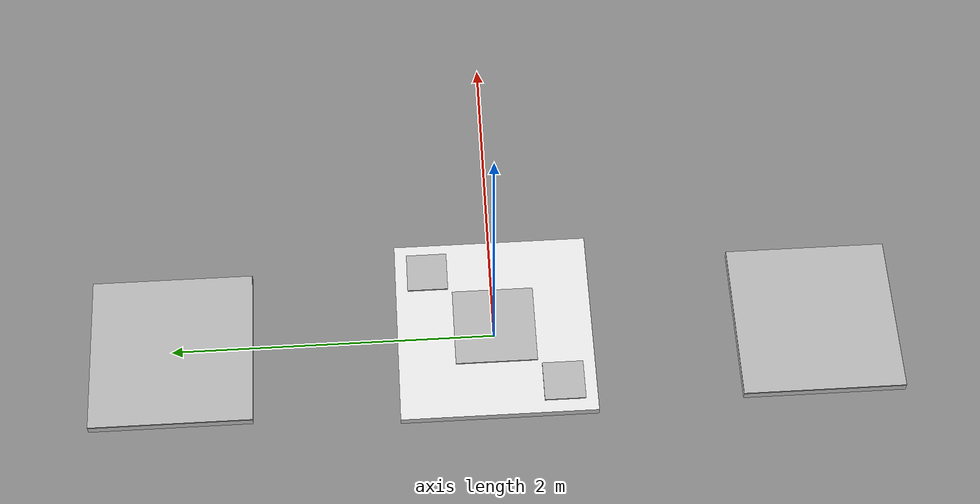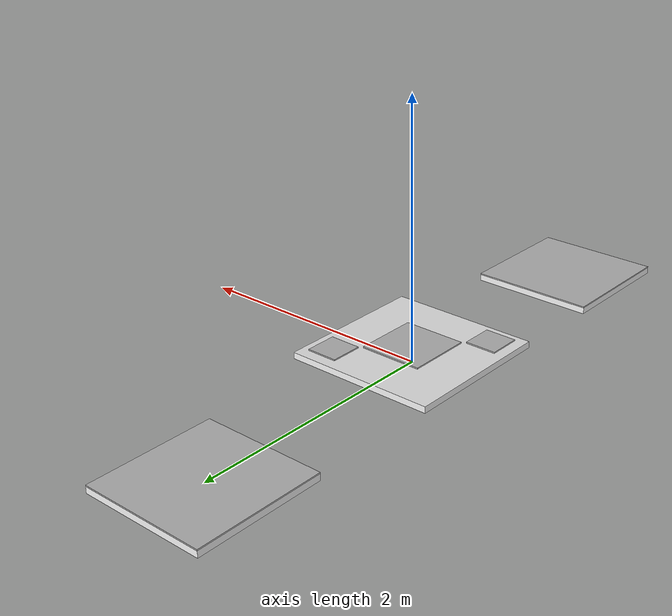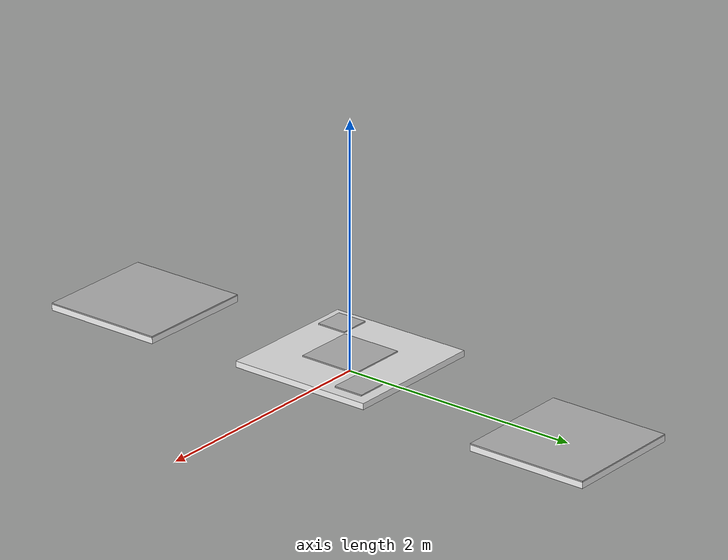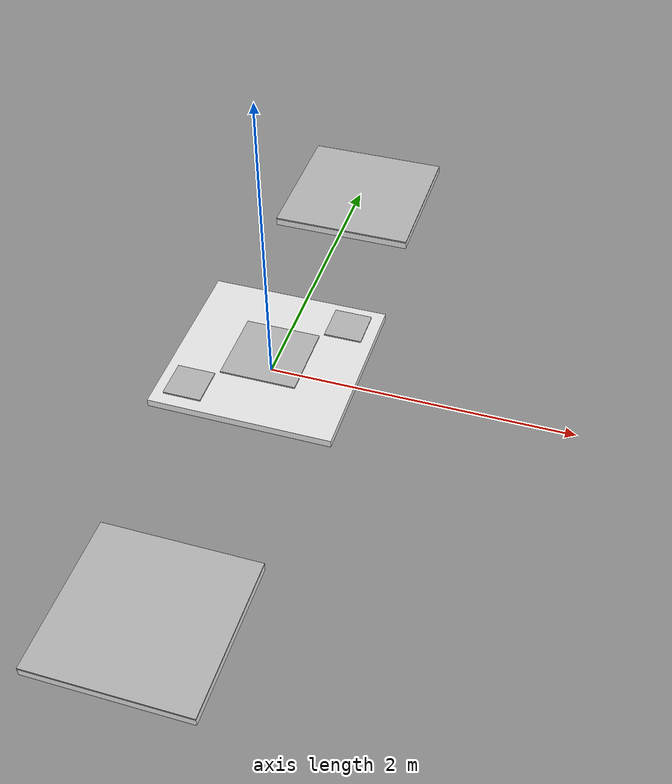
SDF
<sdf version="1.5">
 <world name="default">
  <scene>
   <sky><clouds><speed>12</speed></clouds></sky>
   <ambient>0.95 0.95 0.95 1</ambient>
   <background>0.3 0.3 0.3 1</background>
   <shadows>true</shadows>
  </scene>
  <include><uri>model://sun</uri></include>
  <include><uri>model://landing_pad</uri></include>
  <include><uri>model://at_0</uri><pose>0 2 0 0 0 0</pose></include>
  <include><uri>model://at_1</uri><pose>0 -2 0 0 0 0</pose></include>
  <spherical_coordinates>
   <surface_model>EARTH_WGS84</surface_model>
   <latitude_deg>37.413534</latitude_deg>
   <longitude_deg>-121.996561</longitude_deg>
   <elevation>1.3</elevation>
  </spherical_coordinates>
  <physics name="default_physics" default="0" type="ode">
   <gravity>0 0 -9.8066</gravity>
   <ode>
    <solver>
     <type>quick</type>
     <iters>10</iters>
     <sor>1.3</sor>
     <use_dynamic_moi_rescaling>0</use_dynamic_moi_rescaling>
    </solver>
    <constraints>
     <cfm>0</cfm>
     <erp>0.2</erp>
     <contact_max_correcting_vel>100</contact_max_correcting_vel>
     <contact_surface_layer>0.001</contact_surface_layer>
    </constraints>
   </ode>
   <max_step_size>0.004</max_step_size>
   <real_time_factor>1</real_time_factor>
   <real_time_update_rate>250</real_time_update_rate>
   <magnetic_field>6.0e-6 2.3e-5 -4.2e-5</magnetic_field>
  </physics>
 </world>
</sdf>

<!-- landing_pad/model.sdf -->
<sdf version="1.5">
  <model name="landing_pad">
    <pose>0.0 0.0 0.1  0 0 0</pose>
    <static>false</static>
    <link name="link">
      <collision name="base_collision">
        <geometry>
          <box>
            <size>1.2 1.2 0.05</size>
          </box>
        </geometry>
      </collision>
      <visual name="base_visual">
        <geometry>
          <box>
            <size>1.2 1.2 0.05</size>
          </box>
        </geometry>
        <material>
          <script>
            <name>Gazebo/White</name>
            <uri>file://media/materials/scripts/gazebo.material</uri>
          </script>
        </material>
      </visual>
      <visual name="pad_visual">
      	<pose>0 0 0.04 0 0 0</pose>
        <geometry>
          <box>
            <size>0.5 0.5 0.01</size>
          </box>
        </geometry>
        <material>
          <script>
          	<uri>model://landing_pad/materials/scripts</uri>
               <uri>model://landing_pad/materials/textures</uri>
          	<name>ChargingPadTexture</name>
          </script>
        </material>
      </visual>
      <visual name="marker1">
      	<pose>0.4 0.4 0.04 0 0 0</pose>
        <geometry>
          <box>
            <size>0.25 0.25 0.01</size>
          </box>
        </geometry>
        <material>
          <script>
          	<uri>model://landing_pad/materials/scripts</uri>
               <uri>model://landing_pad/materials/textures</uri>
          	<name>at5Texture</name>
          </script>
        </material>
      </visual>
      <visual name="marker2">
      	<pose>-0.4 -0.4 0.04 0 0 0</pose>
        <geometry>
          <box>
            <size>0.25 0.25 0.01</size>
          </box>
        </geometry>
        <material>
          <script>
          	<uri>model://landing_pad/materials/scripts</uri>
               <uri>model://landing_pad/materials/textures</uri>
          	<name>at4Texture</name>
          </script>
        </material>
      </visual>
    </link>
  </model>
</sdf>

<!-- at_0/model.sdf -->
<sdf version="1.5">
  <model name="april_tag_0">
    <pose>0.0 0.0 0.05  0 0 0</pose>
    <static>false</static>
    <link name="link">
      <collision name="base_collision">
        <geometry>
          <box>
            <size>1 1 0.05</size>
          </box>
        </geometry>
      </collision>
      <visual name="base_visual">
        <geometry>
          <box>
            <size>1 1 0.05</size>
          </box>
        </geometry>
        <material>
          <script>
            <name>Gazebo/White</name>
            <uri>file://media/materials/scripts/gazebo.material</uri>
          </script>
        </material>
      </visual>
      <visual name="pad_visual">
      	<pose>0 0 0.03 0 0 0</pose>
        <geometry>
          <box>
            <size>1 1 0.01</size>
          </box>
        </geometry>
        <material>
          <script>
          	<uri>model://at_0/materials/scripts</uri>
               <uri>model://at_0/materials/textures</uri>
          	<name>at0Texture</name>
          </script>
        </material>
      </visual>

    </link>
  </model>
</sdf>

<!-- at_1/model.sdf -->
<sdf version="1.5">
  <model name="april_tag_1">
    <pose>0.0 0.0 0.05  0 0 0</pose>
    <static>false</static>
    <link name="link">
      <collision name="base_collision">
        <geometry>
          <box>
            <size>1 1 0.05</size>
          </box>
        </geometry>
      </collision>
      <visual name="base_visual">
        <geometry>
          <box>
            <size>1 1 0.05</size>
          </box>
        </geometry>
        <material>
          <script>
            <name>Gazebo/White</name>
            <uri>file://media/materials/scripts/gazebo.material</uri>
          </script>
        </material>
      </visual>
      <visual name="pad_visual">
      	<pose>0 0 0.03 0 0 0</pose>
        <geometry>
          <box>
            <size>1 1 0.01</size>
          </box>
        </geometry>
        <material>
          <script>
          	<uri>model://at_1/materials/scripts</uri>
               <uri>model://at_1/materials/textures</uri>
          	<name>at1Texture</name>
          </script>
        </material>
      </visual>

    </link>
  </model>
</sdf>
